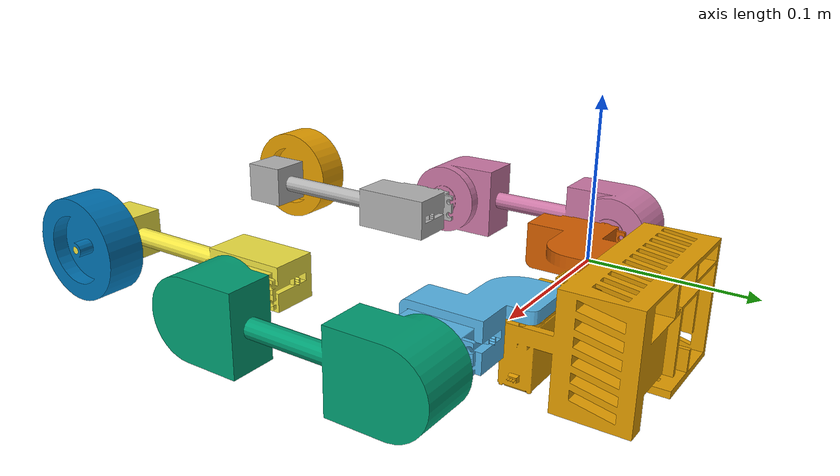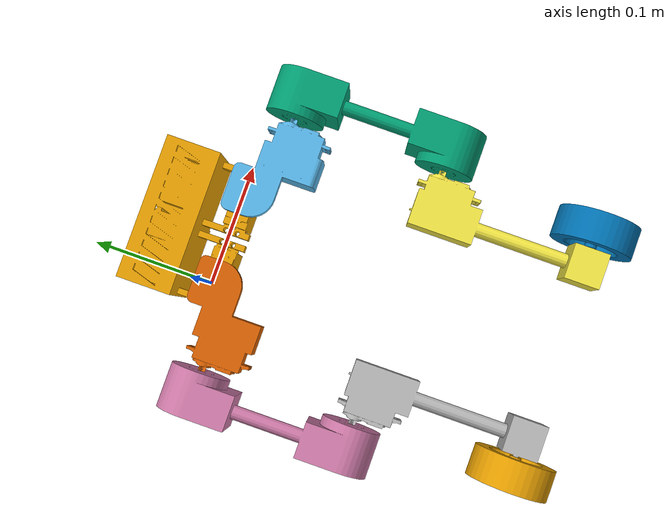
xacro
<?xml version="1.0"?>
<robot name="planar_3dof_full" xmlns:xacro="http://www.ros.org/wiki/xacro">

  <!-- =====================================================
                            ARGUMENTS
       ===================================================== -->

  <xacro:arg name="pkg_share" default=""/>
  <xacro:arg name="controllers_yaml" default=""/>

  <xacro:property name="pkg_share" value="$(arg pkg_share)"/>
  <xacro:property name="controllers_yaml" value="$(arg controllers_yaml)"/>

  <!-- =====================================================
                       WORLD (Debugging)
       ===================================================== -->

  <!-- =====================================================
                            BASE LINK
       ===================================================== -->

  <link name="base_link">

    <inertial>
      <origin xyz="0 0 0" rpy="0 0 0"/>
      <mass value="0.240693"/>
      <inertia
        ixx="0.001"
        iyy="0.001"
        izz="0.001"
        ixy="0"
        ixz="0"
        iyz="0"/>
    </inertial>

    <visual>
      <geometry>
        <mesh filename="file://${pkg_share}/meshes/base_link.STL"
              scale="1 1 1"/>
      </geometry>
    </visual>

    <collision>
      <geometry>
        <mesh filename="file://${pkg_share}/meshes/base_link.STL"
              scale="1 1 1"/>
      </geometry>
    </collision>

  </link>

  <!-- =====================================================
                            LEFT LEG
       ===================================================== -->

  <link name="Link_c_left">

    <inertial>
      <origin xyz="0 0 0" rpy="0 0 0"/>
      <mass value="0.076578"/>
      <inertia
        ixx="0.0005"
        iyy="0.0005"
        izz="0.0005"
        ixy="0"
        ixz="0"
        iyz="0"/>
    </inertial>

    <visual>
      <geometry>
        <mesh filename="file://${pkg_share}/meshes/Link_c_left.STL"
              scale="1 1 1"/>
      </geometry>
    </visual>

    <collision>
      <geometry>
        <mesh filename="file://${pkg_share}/meshes/Link_c_left.STL"
              scale="1 1 1"/>
      </geometry>
    </collision>

  </link>

  <joint name="Joint_c_left" type="revolute">
    <origin xyz="0.0803 0 0" rpy="0 0 0"/>
    <parent link="base_link"/>
    <child link="Link_c_left"/>
    <axis xyz="0 0 1"/>

    <limit
      lower="-1.5708"
      upper="1.5708"
      effort="1000"
      velocity="2"/>

    <dynamics
      damping="300.0"
      friction="100.0"/>
  </joint>

  <link name="Link_p_left">

    <inertial>
      <origin xyz="0 0 0" rpy="0 0 0"/>
      <mass value="0.27292"/>
      <inertia
        ixx="0.001"
        iyy="0.001"
        izz="0.001"
        ixy="0"
        ixz="0"
        iyz="0"/>
    </inertial>

    <visual>
      <geometry>
        <mesh filename="file://${pkg_share}/meshes/Link_p_left.STL"
              scale="1 1 1"/>
      </geometry>
    </visual>

    <collision>
      <geometry>
        <mesh filename="file://${pkg_share}/meshes/Link_p_left.STL"
              scale="1 1 1"/>
      </geometry>
    </collision>

  </link>

  <joint name="Joint_p_left" type="revolute">
    <origin xyz="0.0705 -0.017147 -0.00786"
            rpy="0 -1.5708 0"/>
    <parent link="Link_c_left"/>
    <child link="Link_p_left"/>
    <axis xyz="0 0 -1"/>

    <limit
      lower="-1.5708"
      upper="1.5708"
      effort="1000"
      velocity="2"/>

    <dynamics
      damping="300.0"
      friction="100.0"/>
  </joint>

  <link name="Link_r_left">

    <inertial>
      <origin xyz="0 0 0" rpy="0 0 0"/>
      <mass value="0.096277"/>
      <inertia
        ixx="0.0005"
        iyy="0.0005"
        izz="0.0005"
        ixy="0"
        ixz="0"
        iyz="0"/>
    </inertial>

    <visual>
      <geometry>
        <mesh filename="file://${pkg_share}/meshes/Link_r_left.STL"
              scale="1 1 1"/>
      </geometry>
    </visual>

    <collision>
      <geometry>
        <mesh filename="file://${pkg_share}/meshes/Link_r_left.STL"
              scale="1 1 1"/>
      </geometry>
    </collision>

  </link>

  <joint name="Joint_r_left" type="revolute">
    <origin xyz="0 -0.13069 0"
            rpy="3.129 -0.00050149 -0.03981"/>
    <parent link="Link_p_left"/>
    <child link="Link_r_left"/>
    <axis xyz="0 0 1"/>

    <limit
      lower="-1.5708"
      upper="1.5708"
      effort="1000"
      velocity="2"/>

    <dynamics
      damping="300.0"
      friction="100.0"/>
  </joint>

  <link name="Link_wheels_left">

    <inertial>
      <origin xyz="0 0 -0.013" rpy="0 0 0"/>
      <mass value="0.065044"/>
      <inertia
        ixx="2.77E-05"
        iyy="2.77E-05"
        izz="4.9085E-05"
        ixy="0"
        ixz="0"
        iyz="0"/>
    </inertial>

    <visual>
      <geometry>
        <mesh filename="file://${pkg_share}/meshes/Link_wheels_left.STL"
              scale="1 1 1"/>
      </geometry>
    </visual>

    <collision>
      <geometry>
        <mesh filename="file://${pkg_share}/meshes/Link_wheels_left.STL"
              scale="1 1 1"/>
      </geometry>
    </collision>

  </link>

  <joint name="Joint_wheels_left" type="continuous">
    <origin
      xyz="0.0049779 0.13502 0.0082029"
      rpy="0.0126 0 -0.039813"/>
    <parent link="Link_r_left"/>
    <child link="Link_wheels_left"/>
    <axis xyz="0 0 1"/>

    <limit
      effort="1000"
      velocity="20"/>

    <dynamics
      damping="3.0"
      friction="0.1"/>
  </joint>

  <!-- =====================================================
                           RIGHT LEG
       ===================================================== -->

  <link name="Link_c_right">

    <inertial>
      <origin xyz="0 0 0" rpy="0 0 0"/>
      <mass value="0.077224"/>
      <inertia
        ixx="0.0005"
        iyy="0.0005"
        izz="0.0005"
        ixy="0"
        ixz="0"
        iyz="0"/>
    </inertial>

    <visual>
      <geometry>
        <mesh filename="file://${pkg_share}/meshes/Link_c_right.STL"
              scale="1 1 1"/>
      </geometry>
    </visual>

    <collision>
      <geometry>
        <mesh filename="file://${pkg_share}/meshes/Link_c_right.STL"
              scale="1 1 1"/>
      </geometry>
    </collision>

  </link>

  <joint name="Joint_c_right" type="revolute">
    <origin xyz="0 0 0" rpy="0 0 0"/>
    <parent link="base_link"/>
    <child link="Link_c_right"/>
    <axis xyz="0 0 1"/>

    <limit
      lower="-1.5708"
      upper="1.5708"
      effort="1000"
      velocity="5"/>

    <dynamics
      damping="100.0"
      friction="50.0"/>
  </joint>

  <link name="Link_p_right">

    <inertial>
      <origin xyz="0 0 0" rpy="0 0 0"/>
      <mass value="0.27292"/>
      <inertia
        ixx="0.001"
        iyy="0.001"
        izz="0.001"
        ixy="0"
        ixz="0"
        iyz="0"/>
    </inertial>

    <visual>
      <geometry>
        <mesh filename="file://${pkg_share}/meshes/Link_p_right.STL"
              scale="1 1 1"/>
      </geometry>
    </visual>

    <collision>
      <geometry>
        <mesh filename="file://${pkg_share}/meshes/Link_p_right.STL"
              scale="1 1 1"/>
      </geometry>
    </collision>

  </link>

  <joint name="Joint_p_right" type="revolute">
    <origin
      xyz="-0.0705 -0.015 -0.0077"
      rpy="-1.5708 -1.5555 1.5951"/>
    <parent link="Link_c_right"/>
    <child link="Link_p_right"/>
    <axis xyz="0 0 1"/>

    <limit
      lower="-1.5708"
      upper="1.5708"
      effort="1000"
      velocity="2"/>

    <dynamics
      damping="300.0"
      friction="100.0"/>
  </joint>

  <link name="Link_r_right">

    <inertial>
      <origin xyz="0 0 0" rpy="0 0 0"/>
      <mass value="0.096277"/>
      <inertia
        ixx="0.0005"
        iyy="0.0005"
        izz="0.0005"
        ixy="0"
        ixz="0"
        iyz="0"/>
    </inertial>

    <visual>
      <geometry>
        <mesh filename="file://${pkg_share}/meshes/Link_r_right.STL"
              scale="1 1 1"/>
      </geometry>
    </visual>

    <collision>
      <geometry>
        <mesh filename="file://${pkg_share}/meshes/Link_r_right.STL"
              scale="1 1 1"/>
      </geometry>
    </collision>

  </link>

  <joint name="Joint_r_right" type="revolute">
    <origin
      xyz="-0.0019963 -0.13064 0.0031739"
      rpy="-3.1416 0 0.015536"/>
    <parent link="Link_p_right"/>
    <child link="Link_r_right"/>
    <axis xyz="0 0 -1"/>

    <limit
      lower="-1.5708"
      upper="1.5708"
      effort="1000"
      velocity="2"/>

    <dynamics
      damping="300.0"
      friction="100.0"/>
  </joint>

  <link name="Link_wheels_right">

    <inertial>
      <origin xyz="0 0 0.013" rpy="0 0 0"/>
      <mass value="0.065044"/>
      <inertia
        ixx="2.77E-05"
        iyy="2.77E-05"
        izz="4.9085E-05"
        ixy="0"
        ixz="0"
        iyz="0"/>
    </inertial>

    <visual>
      <geometry>
        <mesh filename="file://${pkg_share}/meshes/Link_wheels_right.STL"
              scale="1 1 1"/>
      </geometry>
    </visual>

    <collision>
      <geometry>
        <mesh filename="file://${pkg_share}/meshes/Link_wheels_right.STL"
              scale="1 1 1"/>
      </geometry>
    </collision>

  </link>

  <joint name="Joint_wheels_right" type="continuous">
    <origin
      xyz="-0.0041596 0.13494 -0.0097816"
      rpy="-0.024288 0 0.030816"/>
    <parent link="Link_r_right"/>
    <child link="Link_wheels_right"/>
    <axis xyz="0 0 -1"/>

    <limit
      effort="1000"
      velocity="20"/>

    <dynamics
      damping="3.0"
      friction="0.1"/>
  </joint>

  <!-- =====================================================
                         ROS2 CONTROL
       ===================================================== -->

  <ros2_control name="GazeboSystem" type="system">
    <hardware>
      <plugin>gazebo_ros2_control/GazeboSystem</plugin>
    </hardware>

    <joint name="Joint_c_right">
      <command_interface name="position"/>
      <state_interface name="position"/>
      <state_interface name="velocity"/>
    </joint>

    <joint name="Joint_p_right">
      <command_interface name="position"/>
      <state_interface name="position"/>
      <state_interface name="velocity"/>
    </joint>

    <joint name="Joint_r_right">
      <command_interface name="position"/>
      <state_interface name="position"/>
      <state_interface name="velocity"/>
    </joint>

    <joint name="Joint_c_left">
      <command_interface name="position"/>
      <state_interface name="position"/>
      <state_interface name="velocity"/>
    </joint>

    <joint name="Joint_p_left">
      <command_interface name="position"/>
      <state_interface name="position"/>
      <state_interface name="velocity"/>
    </joint>

    <joint name="Joint_r_left">
      <command_interface name="position"/>
      <state_interface name="position"/>
      <state_interface name="velocity"/>
    </joint>

    <joint name="Joint_wheels_left">
      <command_interface name="velocity"/>
      <state_interface name="position"/>
      <state_interface name="velocity"/>
    </joint>

    <joint name="Joint_wheels_right">
      <command_interface name="velocity"/>
      <state_interface name="position"/>
      <state_interface name="velocity"/>
    </joint>

  </ros2_control>

  <!-- =====================================================
                        GAZEBO ROS2 CONTROL
       ===================================================== -->

  <gazebo>
    <plugin
        name="gazebo_ros2_control"
        filename="libgazebo_ros2_control.so">

      <parameters>$(arg controllers_yaml)</parameters>

    </plugin>
  </gazebo>
</robot>
